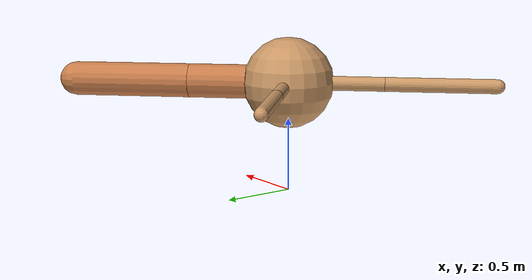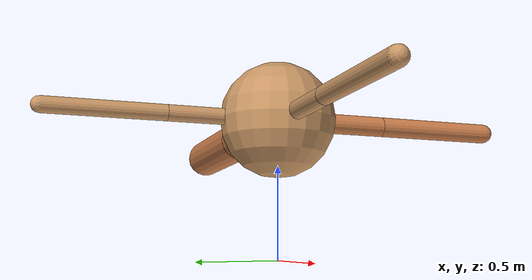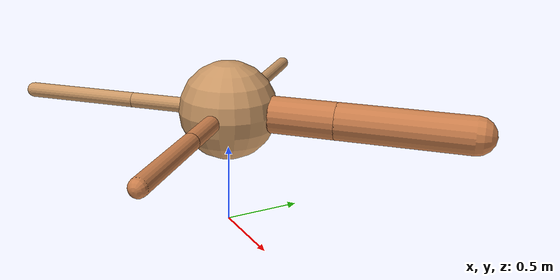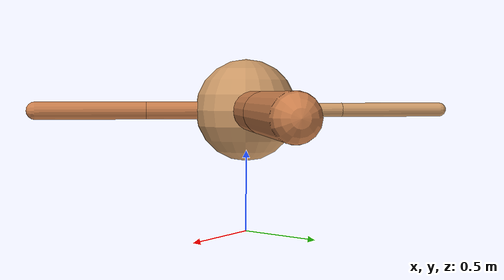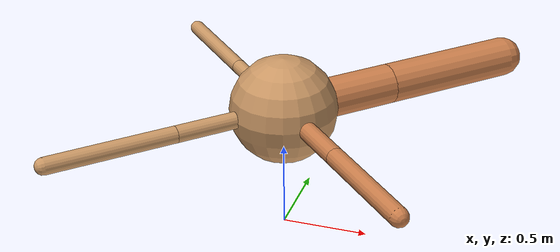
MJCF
<?xml version="1.0" ?>
<mujoco model="ant">

	<compiler angle="degree" coordinate="local" inertiafromgeom="true"/>

	<option integrator="RK4" timestep="0.01"/>

	<custom>

		<numeric data="0.0 0.0 0.55 1.0 0.0 0.0 0.0 0.0 1.0 0.0 -1.0 0.0 -1.0 0.0 1.0" name="init_qpos"/>

	</custom>

	<default>

		<joint armature="1" damping="1" limited="true"/>

		<geom conaffinity="0" condim="3" density="5.0" friction="1.5 0.1 0.1" margin="0.01" rgba="0.8 0.6 0.4 1"/>

	</default>

	<worldbody>

		<body name="torso" pos="0 0 0.75">

			<geom name="torso_geom" pos="0 0 0" size="0.3106078486155339" type="sphere"/>

			<!--joint armature="0" damping="0" limited="false" margin="0.01" name="root" pos="0 0 0" type="free"/-->

			<body name="front_left_leg" pos="0 0 0">

				<geom fromto="0 0 0 0.2 0.2 0" name="aux_1_geom" size="0.11584033478448025" type="capsule" rgba=".8 .5 .3 1"/>

				<body name="aux_1" pos="0.2 0.2 0">

					<joint axis="0 0 1" name="hip_1" pos="0.0 0.0 0.0" range="-40 40" type="hinge"/>

					<geom fromto="0 0 0 0.2844370031386332 0.2844370031386332 0" name="left_leg_geom" size="0.11584033478448025" type="capsule" rgba=".8 .5 .3 1"/>

					<body pos="0.2844370031386332 0.2844370031386332 0" name="front_left_foot">

						<joint axis="-1 1 0" name="ankle_1" pos="0.0 0.0 0.0" range="30 100" type="hinge"/>

						<geom fromto="0 0 0 0.5688740062772664 0.5688740062772664 0" name="left_ankle_geom" size="0.11584033478448025" type="capsule" rgba=".8 .5 .3 1"/>

					</body>

				</body>

			</body>

			<body name="front_right_leg" pos="0 0 0">

				<geom fromto="0 0 0 -0.2 0.2 0" name="aux_2_geom" size="0.04328317104946347" type="capsule"/>

				<body name="aux_2" pos="-0.2 0.2 0">

					<joint axis="0 0 1" name="hip_2" pos="0.0 0.0 0.0" range="-40 40" type="hinge"/>

					<geom fromto="0 0 0 -0.22499928360751495 0.22499928360751495 0" name="right_leg_geom" size="0.04328317104946347" type="capsule"/>

					<body pos="-0.22499928360751495 0.22499928360751495 0" name="front_right_foot">

						<joint axis="1 1 0" name="ankle_2" pos="0.0 0.0 0.0" range="-100 -30" type="hinge"/>

						<geom fromto="0 0 0 -0.4499985672150299 0.4499985672150299 0" name="right_ankle_geom" size="0.04328317104946347" type="capsule"/>

					</body>

				</body>

			</body>

			<body name="left_back_leg" pos="0 0 0">

				<geom fromto="0 0 0 -0.2 -0.2 0" name="aux_3_geom" size="0.04844645593641325" type="capsule"/>

				<body name="aux_3" pos="-0.2 -0.2 0">

					<joint axis="0 0 1" name="hip_3" pos="0.0 0.0 0.0" range="-40 40" type="hinge"/>

					<geom fromto="0 0 0 -0.26366808917887913 -0.26366808917887913 0" name="back_leg_geom" size="0.04844645593641325" type="capsule"/>

					<body pos="-0.26366808917887913 -0.26366808917887913 0" name="left_back_foot">

						<joint axis="-1 1 0" name="ankle_3" pos="0.0 0.0 0.0" range="-100 -30" type="hinge"/>

						<geom fromto="0 0 0 -0.5273361783577583 -0.5273361783577583 0" name="third_ankle_geom" size="0.04844645593641325" type="capsule"/>

					</body>

				</body>

			</body>

			<body name="right_back_leg" pos="0 0 0">

				<geom fromto="0 0 0 0.2 -0.2 0" name="aux_4_geom" size="0.05365670438033565" type="capsule" rgba=".8 .5 .3 1"/>

				<body name="aux_4" pos="0.2 -0.2 0">

					<joint axis="0 0 1" name="hip_4" pos="0.0 0.0 0.0" range="-40 40" type="hinge"/>

					<geom fromto="0 0 0 0.2305909711654227 -0.2305909711654227 0" name="rightback_leg_geom" size="0.05365670438033565" type="capsule" rgba=".8 .5 .3 1"/>

					<body pos="0.2305909711654227 -0.2305909711654227 0" name="right_back_foot">

						<joint axis="1 1 0" name="ankle_4" pos="0.0 0.0 0.0" range="30 100" type="hinge"/>

						<geom fromto="0 0 0 0.4611819423308454 -0.4611819423308454 0" name="fourth_ankle_geom" size="0.05365670438033565" type="capsule" rgba=".8 .5 .3 1"/>

					</body>

				</body>

			</body>

		</body>

	</worldbody>

	<actuator>

		<motor ctrllimited="true" ctrlrange="-1.0 1.0" joint="hip_4" gear="150"/>

		<motor ctrllimited="true" ctrlrange="-1.0 1.0" joint="ankle_4" gear="150"/>

		<motor ctrllimited="true" ctrlrange="-1.0 1.0" joint="hip_1" gear="150"/>

		<motor ctrllimited="true" ctrlrange="-1.0 1.0" joint="ankle_1" gear="150"/>

		<motor ctrllimited="true" ctrlrange="-1.0 1.0" joint="hip_2" gear="150"/>

		<motor ctrllimited="true" ctrlrange="-1.0 1.0" joint="ankle_2" gear="150"/>

		<motor ctrllimited="true" ctrlrange="-1.0 1.0" joint="hip_3" gear="150"/>

		<motor ctrllimited="true" ctrlrange="-1.0 1.0" joint="ankle_3" gear="150"/>

	</actuator>

</mujoco>
